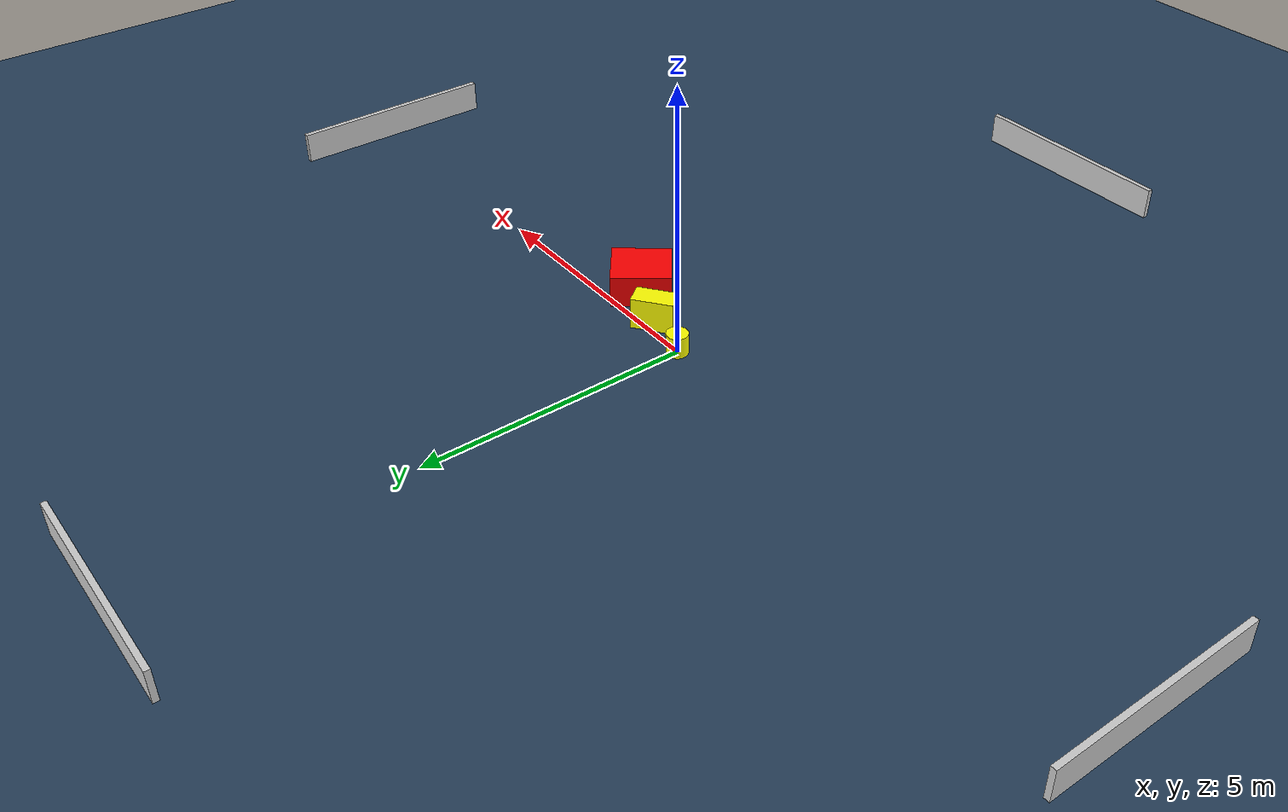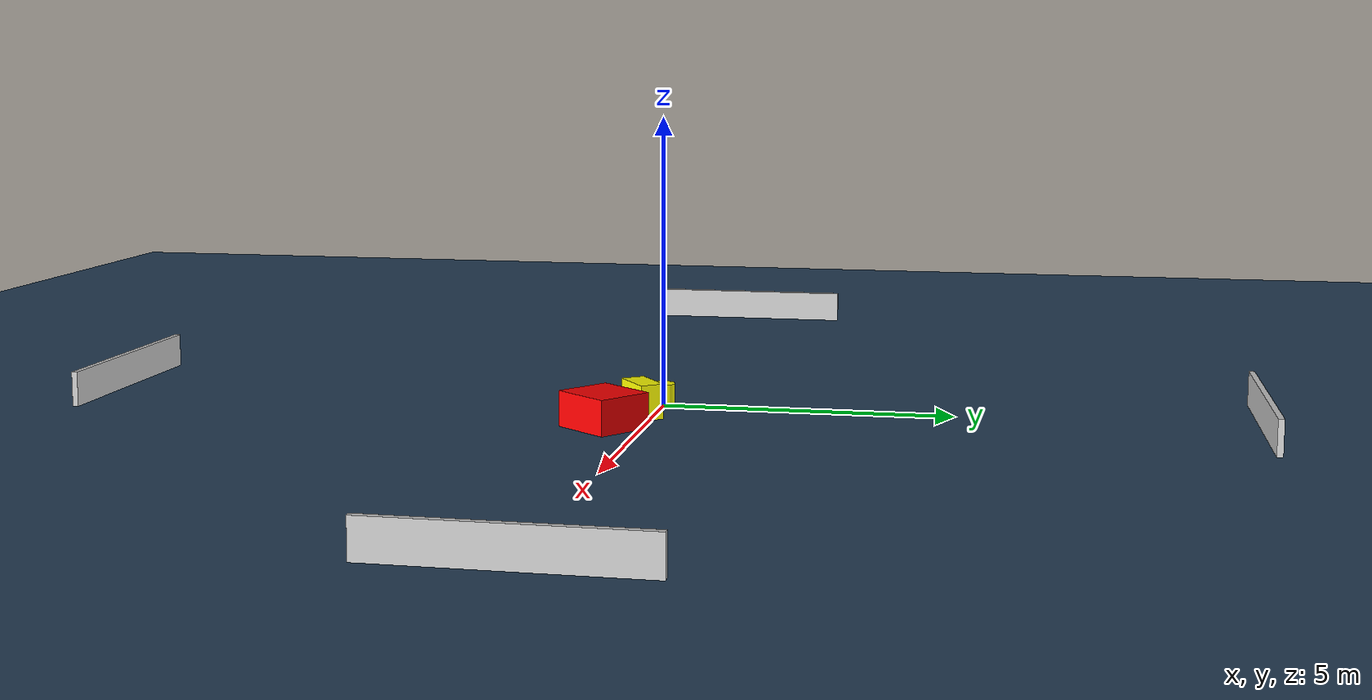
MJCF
<?xml version="1.0" ?>
<mujoco model="generated_environment">
  <option timestep="0.01" integrator="RK4" cone="elliptic"/>
  <default>
    <geom density="1"/>
  </default>
  <asset>
    <texture builtin="gradient" height="3072" name="skybox" rgb1="0.3 0.5 0.7" rgb2="0 0 0" type="skybox" width="512"/>
    <texture builtin="checker" height="300" name="groundplane" rgb1="0.2 0.3 0.4" rgb2="0.1 0.2 0.3" type="2d" width="300"/>
    <material name="groundplane" reflectance="0.2" texrepeat="5 5" texture="groundplane"/>
  </asset>
  <worldbody>
    <light dir="0 0 -1" directional="true" pos="0 0 1.5"/>
    <geom condim="3" friction="0.5 0.005 0.001" material="groundplane" name="floor" pos="0 0 0" size="0 0 0.05" type="plane"/>
    <body name="walls">
      <geom name="wall_1" condim="4" pos="-10.0 0.0 0.3" rgba="0.800000011920929 0.800000011920929 0.800000011920929 1.0" size="0.05 2.0 0.3" type="box"/>
      <geom name="wall_2" condim="4" pos="10.0 0.0 0.3" rgba="0.800000011920929 0.800000011920929 0.800000011920929 1.0" size="0.05 2.0 0.3" type="box"/>
      <geom name="wall_3" condim="4" pos="0.0 -10.0 0.3" rgba="0.800000011920929 0.800000011920929 0.800000011920929 1.0" size="2.0 0.05 0.3" type="box"/>
      <geom name="wall_4" condim="4" pos="0.0 10.0 0.3" rgba="0.800000011920929 0.800000011920929 0.800000011920929 1.0" size="2.0 0.05 0.3" type="box"/>
    </body>
    <body name="robot">
      <joint name="joint_x" type="slide" pos="0 0 0" axis="1 0 0"/>
      <joint name="joint_y" type="slide" pos="0 0 0" axis="0 1 0"/>
      <geom name="robot" type="cylinder" pos="0.0 0.0 0.2" size="0.2 0.2 0.0" mass="5.0" friction="1.0 0.005 0.0001" condim="4" rgba="1.0 1.0 0.0 1.0"/>
    </body>
    <body name="obstacle_1_movable">
      <geom name="obstacle_1_movable" condim="4" pos="0.8893265812951483 -0.18887349321565344 0.3" euler="0 0 36.62843366628531" friction="0.0 0.005 0.001" rgba="1.0 1.0 0.0 1.0" size="0.38730230754424794 0.20605391001438134 0.3" type="box" mass="0.1"/>
      <joint type="free"/>
    </body>
    <body name="obstacle_2_static">
      <geom name="obstacle_2_static" condim="4" pos="1.8925525216417174 -0.6303932721104735 0.3" euler="0 0 322.4544738684358" friction="0.0 0.005 0.001" rgba="1.0 0.0 0.0 1.0" size="0.49772738825468027 0.5491777607446586 0.3" type="box"/>
    </body>
  </worldbody>
  <actuator>
    <motor name="actuator_x" joint="joint_x" gear="1" ctrlrange="-1 1"/>
    <motor name="actuator_y" joint="joint_y" gear="1" ctrlrange="-1 1"/>
  </actuator>
</mujoco>
